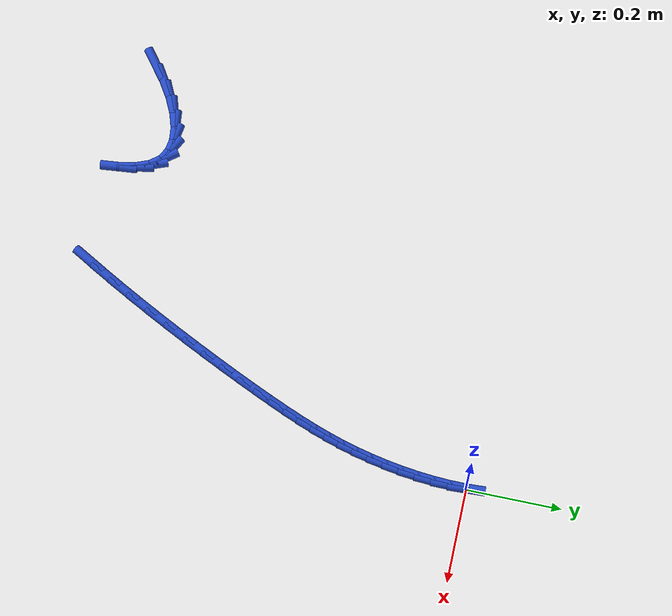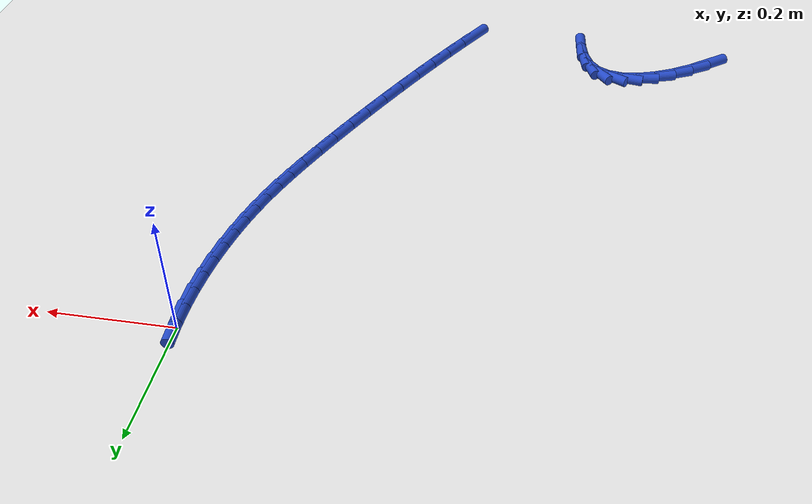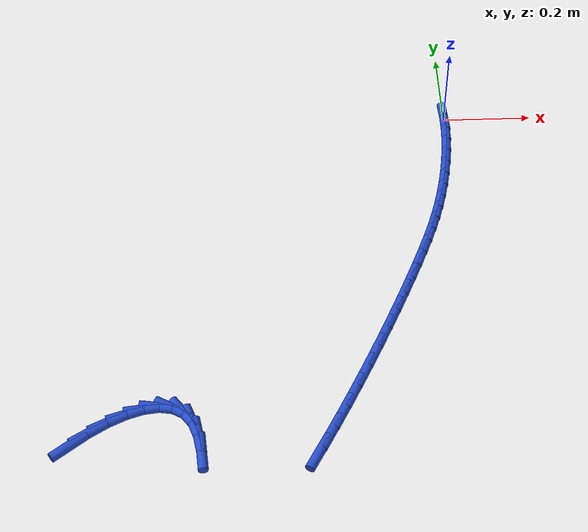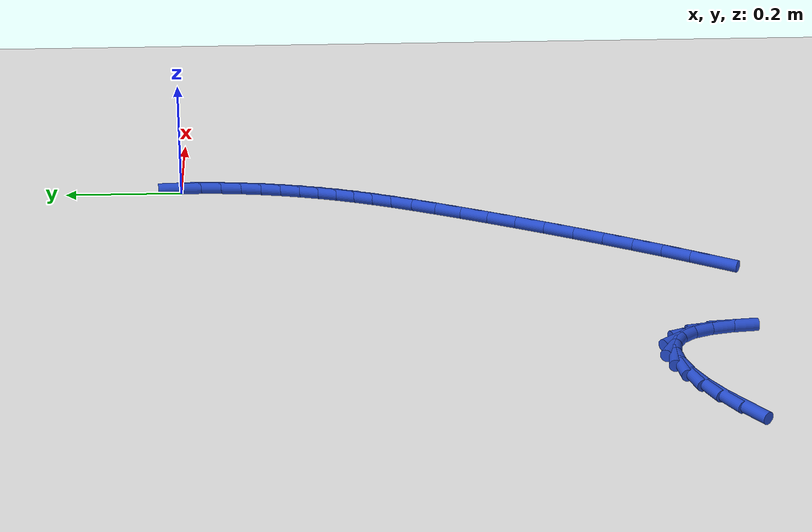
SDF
<sdf version="1.6">
 <world name="default">
  <model name="ground_plane">
   <static>1</static>
   <link name="link">
    <collision name="collision">
     <geometry><plane><normal>0 0 1</normal><size>100 100</size></plane></geometry>
     <surface><friction><ode><mu>100</mu><mu2>50</mu2></ode></friction></surface>
    </collision>
    <visual name="visual">
     <cast_shadows>0</cast_shadows>
     <geometry><plane><normal>0 0 1</normal><size>100 100</size></plane></geometry>
     <material>
      <script><uri>file://media/materials/scripts/gazebo.material</uri><name>Gazebo/WhiteGlow</name></script>
     </material>
    </visual>
   </link>
  </model>
  <model name="line">
   <link name="link_0">
    <pose>3.469446951953614e-18 6.938893903907228e-18 0.01 0 1.57 -1.520493145179703</pose>
    <collision name="collision">
     <geometry><cylinder><radius>0.01</radius><length>0.08</length></cylinder></geometry>
    </collision>
    <visual name="visual">
     <material>
      <script><name>Gazebo/Blue</name><uri>file://media/materials/scripts/gazebo.material</uri></script>
     </material>
     <geometry><cylinder><radius>0.01</radius><length>0.08</length></cylinder></geometry>
    </visual>
   </link>
   <link name="link_229">
    <pose>-0.7951911140321126 -0.8473373465586784 0.01 0 1.57 0.6537888639458509</pose>
    <collision name="collision">
     <geometry><cylinder><radius>0.01</radius><length>0.08</length></cylinder></geometry>
    </collision>
    <visual name="visual">
     <material>
      <script><name>Gazebo/Blue</name><uri>file://media/materials/scripts/gazebo.material</uri></script>
     </material>
     <geometry><cylinder><radius>0.01</radius><length>0.08</length></cylinder></geometry>
    </visual>
   </link>
   <link name="link_230">
    <pose>-0.7599294429186683 -0.8203198475708031 0.01 0 1.57 0.5587821787050169</pose>
    <collision name="collision">
     <geometry><cylinder><radius>0.01</radius><length>0.08</length></cylinder></geometry>
    </collision>
    <visual name="visual">
     <material>
      <script><name>Gazebo/Blue</name><uri>file://media/materials/scripts/gazebo.material</uri></script>
     </material>
     <geometry><cylinder><radius>0.01</radius><length>0.08</length></cylinder></geometry>
    </visual>
   </link>
   <link name="link_231">
    <pose>-0.724520701985153 -0.798180379214861 0.01 0 1.57 0.44696691735292043</pose>
    <collision name="collision">
     <geometry><cylinder><radius>0.01</radius><length>0.08</length></cylinder></geometry>
    </collision>
    <visual name="visual">
     <material>
      <script><name>Gazebo/Blue</name><uri>file://media/materials/scripts/gazebo.material</uri></script>
     </material>
     <geometry><cylinder><radius>0.01</radius><length>0.08</length></cylinder></geometry>
    </visual>
   </link>
   <link name="link_232">
    <pose>-0.6899062193146044 -0.7815889758276404 0.01 0 1.57 0.30561596534069996</pose>
    <collision name="collision">
     <geometry><cylinder><radius>0.01</radius><length>0.08</length></cylinder></geometry>
    </collision>
    <visual name="visual">
     <material>
      <script><name>Gazebo/Blue</name><uri>file://media/materials/scripts/gazebo.material</uri></script>
     </material>
     <geometry><cylinder><radius>0.01</radius><length>0.08</length></cylinder></geometry>
    </visual>
   </link>
   <link name="link_233">
    <pose>-0.6570273229900598 -0.7712156717459291 0.01 0 1.57 0.11488726981699572</pose>
    <collision name="collision">
     <geometry><cylinder><radius>0.01</radius><length>0.08</length></cylinder></geometry>
    </collision>
    <visual name="visual">
     <material>
      <script><name>Gazebo/Blue</name><uri>file://media/materials/scripts/gazebo.material</uri></script>
     </material>
     <geometry><cylinder><radius>0.01</radius><length>0.08</length></cylinder></geometry>
    </visual>
   </link>
   <link name="link_234">
    <pose>-0.6268253410945561 -0.7677305013065155 0.01 0 1.57 -0.15203160335804652</pose>
    <collision name="collision">
     <geometry><cylinder><radius>0.01</radius><length>0.08</length></cylinder></geometry>
    </collision>
    <visual name="visual">
     <material>
      <script><name>Gazebo/Blue</name><uri>file://media/materials/scripts/gazebo.material</uri></script>
     </material>
     <geometry><cylinder><radius>0.01</radius><length>0.08</length></cylinder></geometry>
    </visual>
   </link>
   <link name="link_235">
    <pose>-0.6002416017111326 -0.7718034988461878 0.01 0 1.57 -0.5093699727115782</pose>
    <collision name="collision">
     <geometry><cylinder><radius>0.01</radius><length>0.08</length></cylinder></geometry>
    </collision>
    <visual name="visual">
     <material>
      <script><name>Gazebo/Blue</name><uri>file://media/materials/scripts/gazebo.material</uri></script>
     </material>
     <geometry><cylinder><radius>0.01</radius><length>0.08</length></cylinder></geometry>
    </visual>
   </link>
   <link name="link_236">
    <pose>-0.5782174329228261 -0.7841046987017339 0.01 0 1.57 -0.9052236909332019</pose>
    <collision name="collision">
     <geometry><cylinder><radius>0.01</radius><length>0.08</length></cylinder></geometry>
    </collision>
    <visual name="visual">
     <material>
      <script><name>Gazebo/Blue</name><uri>file://media/materials/scripts/gazebo.material</uri></script>
     </material>
     <geometry><cylinder><radius>0.01</radius><length>0.08</length></cylinder></geometry>
    </visual>
   </link>
   <link name="link_237">
    <pose>-0.5616370742571395 -0.805224209565352 0.01 0 1.57 -1.200656387250517</pose>
    <collision name="collision">
     <geometry><cylinder><radius>0.01</radius><length>0.08</length></cylinder></geometry>
    </collision>
    <visual name="visual">
     <material>
      <script><name>Gazebo/Blue</name><uri>file://media/materials/scripts/gazebo.material</uri></script>
     </material>
     <geometry><cylinder><radius>0.01</radius><length>0.08</length></cylinder></geometry>
    </visual>
   </link>
   <link name="link_238">
    <pose>-0.5503523526939785 -0.8343067324187644 0.01 0 1.57 -1.3720951710625002</pose>
    <collision name="collision">
     <geometry><cylinder><radius>0.01</radius><length>0.08</length></cylinder></geometry>
    </collision>
    <visual name="visual">
     <material>
      <script><name>Gazebo/Blue</name><uri>file://media/materials/scripts/gazebo.material</uri></script>
     </material>
     <geometry><cylinder><radius>0.01</radius><length>0.08</length></cylinder></geometry>
    </visual>
   </link>
   <link name="link_239">
    <pose>-0.543318039442638 -0.8692410639730758 0.01 0 1.57 -1.4712386833755975</pose>
    <collision name="collision">
     <geometry><cylinder><radius>0.01</radius><length>0.08</length></cylinder></geometry>
    </collision>
    <visual name="visual">
     <material>
      <script><name>Gazebo/Blue</name><uri>file://media/materials/scripts/gazebo.material</uri></script>
     </material>
     <geometry><cylinder><radius>0.01</radius><length>0.08</length></cylinder></geometry>
    </visual>
   </link>
   <link name="link_257">
    <pose>-0.3207694779513595 -0.8783257569736863 0.01 0 1.57 1.0565773677603651</pose>
    <collision name="collision">
     <geometry><cylinder><radius>0.01</radius><length>0.08</length></cylinder></geometry>
    </collision>
    <visual name="visual">
     <material>
      <script><name>Gazebo/Blue</name><uri>file://media/materials/scripts/gazebo.material</uri></script>
     </material>
     <geometry><cylinder><radius>0.01</radius><length>0.08</length></cylinder></geometry>
    </visual>
   </link>
   <link name="link_258">
    <pose>-0.2963915607066855 -0.8351721914788824 0.01 0 1.57 1.0711567104002082</pose>
    <collision name="collision">
     <geometry><cylinder><radius>0.01</radius><length>0.08</length></cylinder></geometry>
    </collision>
    <visual name="visual">
     <material>
      <script><name>Gazebo/Blue</name><uri>file://media/materials/scripts/gazebo.material</uri></script>
     </material>
     <geometry><cylinder><radius>0.01</radius><length>0.08</length></cylinder></geometry>
    </visual>
   </link>
   <link name="link_259">
    <pose>-0.2719457688917271 -0.7903861154713058 0.01 0 1.57 1.0839276002107192</pose>
    <collision name="collision">
     <geometry><cylinder><radius>0.01</radius><length>0.08</length></cylinder></geometry>
    </collision>
    <visual name="visual">
     <material>
      <script><name>Gazebo/Blue</name><uri>file://media/materials/scripts/gazebo.material</uri></script>
     </material>
     <geometry><cylinder><radius>0.01</radius><length>0.08</length></cylinder></geometry>
    </visual>
   </link>
   <link name="link_260">
    <pose>-0.24764593790328698 -0.7444830484635868 0.01 0 1.57 1.0953874689104877</pose>
    <collision name="collision">
     <geometry><cylinder><radius>0.01</radius><length>0.08</length></cylinder></geometry>
    </collision>
    <visual name="visual">
     <material>
      <script><name>Gazebo/Blue</name><uri>file://media/materials/scripts/gazebo.material</uri></script>
     </material>
     <geometry><cylinder><radius>0.01</radius><length>0.08</length></cylinder></geometry>
    </visual>
   </link>
   <link name="link_261">
    <pose>-0.22370590313816707 -0.6979785099683548 0.01 0 1.57 1.1059276200383434</pose>
    <collision name="collision">
     <geometry><cylinder><radius>0.01</radius><length>0.08</length></cylinder></geometry>
    </collision>
    <visual name="visual">
     <material>
      <script><name>Gazebo/Blue</name><uri>file://media/materials/scripts/gazebo.material</uri></script>
     </material>
     <geometry><cylinder><radius>0.01</radius><length>0.08</length></cylinder></geometry>
    </visual>
   </link>
   <link name="link_262">
    <pose>-0.2003394999931715 -0.651388019498243 0.01 0 1.57 1.1158782075319014</pose>
    <collision name="collision">
     <geometry><cylinder><radius>0.01</radius><length>0.08</length></cylinder></geometry>
    </collision>
    <visual name="visual">
     <material>
      <script><name>Gazebo/Blue</name><uri>file://media/materials/scripts/gazebo.material</uri></script>
     </material>
     <geometry><cylinder><radius>0.01</radius><length>0.08</length></cylinder></geometry>
    </visual>
   </link>
   <link name="link_263">
    <pose>-0.17776056386510208 -0.6052270965658806 0.01 0 1.57 1.1255430470915928</pose>
    <collision name="collision">
     <geometry><cylinder><radius>0.01</radius><length>0.08</length></cylinder></geometry>
    </collision>
    <visual name="visual">
     <material>
      <script><name>Gazebo/Blue</name><uri>file://media/materials/scripts/gazebo.material</uri></script>
     </material>
     <geometry><cylinder><radius>0.01</radius><length>0.08</length></cylinder></geometry>
    </visual>
   </link>
   <link name="link_264">
    <pose>-0.15618293015076154 -0.5600112606838985 0.01 0 1.57 1.1352321317968928</pose>
    <collision name="collision">
     <geometry><cylinder><radius>0.01</radius><length>0.08</length></cylinder></geometry>
    </collision>
    <visual name="visual">
     <material>
      <script><name>Gazebo/Blue</name><uri>file://media/materials/scripts/gazebo.material</uri></script>
     </material>
     <geometry><cylinder><radius>0.01</radius><length>0.08</length></cylinder></geometry>
    </visual>
   </link>
   <link name="link_265">
    <pose>-0.1358204342469525 -0.5162560313649268 0.01 0 1.57 1.145299695449267</pose>
    <collision name="collision">
     <geometry><cylinder><radius>0.01</radius><length>0.08</length></cylinder></geometry>
    </collision>
    <visual name="visual">
     <material>
      <script><name>Gazebo/Blue</name><uri>file://media/materials/scripts/gazebo.material</uri></script>
     </material>
     <geometry><cylinder><radius>0.01</radius><length>0.08</length></cylinder></geometry>
    </visual>
   </link>
   <link name="link_266">
    <pose>-0.11688691155047758 -0.4744769281215964 0.01 0 1.57 1.1561991933224331</pose>
    <collision name="collision">
     <geometry><cylinder><radius>0.01</radius><length>0.08</length></cylinder></geometry>
    </collision>
    <visual name="visual">
     <material>
      <script><name>Gazebo/Blue</name><uri>file://media/materials/scripts/gazebo.material</uri></script>
     </material>
     <geometry><cylinder><radius>0.01</radius><length>0.08</length></cylinder></geometry>
    </visual>
   </link>
   <link name="link_267">
    <pose>-0.09959619745813938 -0.43518947046653783 0.01 0 1.57 1.169022951489019</pose>
    <collision name="collision">
     <geometry><cylinder><radius>0.01</radius><length>0.08</length></cylinder></geometry>
    </collision>
    <visual name="visual">
     <material>
      <script><name>Gazebo/Blue</name><uri>file://media/materials/scripts/gazebo.material</uri></script>
     </material>
     <geometry><cylinder><radius>0.01</radius><length>0.08</length></cylinder></geometry>
    </visual>
   </link>
   <link name="link_268">
    <pose>-0.08410613791150362 -0.3987324206525461 0.01 0 1.57 1.1864721320855627</pose>
    <collision name="collision">
     <geometry><cylinder><radius>0.01</radius><length>0.08</length></cylinder></geometry>
    </collision>
    <visual name="visual">
     <material>
      <script><name>Gazebo/Blue</name><uri>file://media/materials/scripts/gazebo.material</uri></script>
     </material>
     <geometry><cylinder><radius>0.01</radius><length>0.08</length></cylinder></geometry>
    </visual>
   </link>
   <link name="link_269">
    <pose>-0.07032616153318931 -0.3646602938914907 0.01 0 1.57 1.2093712658695965</pose>
    <collision name="collision">
     <geometry><cylinder><radius>0.01</radius><length>0.08</length></cylinder></geometry>
    </collision>
    <visual name="visual">
     <material>
      <script><name>Gazebo/Blue</name><uri>file://media/materials/scripts/gazebo.material</uri></script>
     </material>
     <geometry><cylinder><radius>0.01</radius><length>0.08</length></cylinder></geometry>
    </visual>
   </link>
   <link name="link_270">
    <pose>-0.05809682433680886 -0.33231017635267895 0.01 0 1.57 1.2373627110017662</pose>
    <collision name="collision">
     <geometry><cylinder><radius>0.01</radius><length>0.08</length></cylinder></geometry>
    </collision>
    <visual name="visual">
     <material>
      <script><name>Gazebo/Blue</name><uri>file://media/materials/scripts/gazebo.material</uri></script>
     </material>
     <geometry><cylinder><radius>0.01</radius><length>0.08</length></cylinder></geometry>
    </visual>
   </link>
   <link name="link_271">
    <pose>-0.04725867977527284 -0.301019146121349 0.01 0 1.57 1.2693347982070164</pose>
    <collision name="collision">
     <geometry><cylinder><radius>0.01</radius><length>0.08</length></cylinder></geometry>
    </collision>
    <visual name="visual">
     <material>
      <script><name>Gazebo/Blue</name><uri>file://media/materials/scripts/gazebo.material</uri></script>
     </material>
     <geometry><cylinder><radius>0.01</radius><length>0.08</length></cylinder></geometry>
    </visual>
   </link>
   <link name="link_272">
    <pose>-0.037652281301490724 -0.2701242812827355 0.01 0 1.57 1.3034849804595943</pose>
    <collision name="collision">
     <geometry><cylinder><radius>0.01</radius><length>0.08</length></cylinder></geometry>
    </collision>
    <visual name="visual">
     <material>
      <script><name>Gazebo/Blue</name><uri>file://media/materials/scripts/gazebo.material</uri></script>
     </material>
     <geometry><cylinder><radius>0.01</radius><length>0.08</length></cylinder></geometry>
    </visual>
   </link>
   <link name="link_273">
    <pose>-0.029118182368372377 -0.2389626599220746 0.01 0 1.57 1.3376774348334606</pose>
    <collision name="collision">
     <geometry><cylinder><radius>0.01</radius><length>0.08</length></cylinder></geometry>
    </collision>
    <visual name="visual">
     <material>
      <script><name>Gazebo/Blue</name><uri>file://media/materials/scripts/gazebo.material</uri></script>
     </material>
     <geometry><cylinder><radius>0.01</radius><length>0.08</length></cylinder></geometry>
    </visual>
   </link>
   <link name="link_274">
    <pose>-0.021502712888245536 -0.20688883584399112 0.01 0 1.57 1.3714540051175692</pose>
    <collision name="collision">
     <geometry><cylinder><radius>0.01</radius><length>0.08</length></cylinder></geometry>
    </collision>
    <visual name="visual">
     <material>
      <script><name>Gazebo/Blue</name><uri>file://media/materials/scripts/gazebo.material</uri></script>
     </material>
     <geometry><cylinder><radius>0.01</radius><length>0.08</length></cylinder></geometry>
    </visual>
   </link>
   <link name="link_275">
    <pose>-0.014796484494685461 -0.17369386325778413 0.01 0 1.57 1.4062939930125975</pose>
    <collision name="collision">
     <geometry><cylinder><radius>0.01</radius><length>0.08</length></cylinder></geometry>
    </collision>
    <visual name="visual">
     <material>
      <script><name>Gazebo/Blue</name><uri>file://media/materials/scripts/gazebo.material</uri></script>
     </material>
     <geometry><cylinder><radius>0.01</radius><length>0.08</length></cylinder></geometry>
    </visual>
   </link>
   <link name="link_276">
    <pose>-0.00914103740557559 -0.1396254057585968 0.01 0 1.57 1.4429805937534197</pose>
    <collision name="collision">
     <geometry><cylinder><radius>0.01</radius><length>0.08</length></cylinder></geometry>
    </collision>
    <visual name="visual">
     <material>
      <script><name>Gazebo/Blue</name><uri>file://media/materials/scripts/gazebo.material</uri></script>
     </material>
     <geometry><cylinder><radius>0.01</radius><length>0.08</length></cylinder></geometry>
    </visual>
   </link>
   <link name="link_277">
    <pose>-0.004685018516234012 -0.104952627014827 0.01 0 1.57 1.4822502041886454</pose>
    <collision name="collision">
     <geometry><cylinder><radius>0.01</radius><length>0.08</length></cylinder></geometry>
    </collision>
    <visual name="visual">
     <material>
      <script><name>Gazebo/Blue</name><uri>file://media/materials/scripts/gazebo.material</uri></script>
     </material>
     <geometry><cylinder><radius>0.01</radius><length>0.08</length></cylinder></geometry>
    </visual>
   </link>
   <link name="link_278">
    <pose>-0.0015770747219788243 -0.06994469069487255 0.01 0 1.57 1.5248907255278983</pose>
    <collision name="collision">
     <geometry><cylinder><radius>0.01</radius><length>0.08</length></cylinder></geometry>
    </collision>
    <visual name="visual">
     <material>
      <script><name>Gazebo/Blue</name><uri>file://media/materials/scripts/gazebo.material</uri></script>
     </material>
     <geometry><cylinder><radius>0.01</radius><length>0.08</length></cylinder></geometry>
    </visual>
   </link>
   <link name="link_279">
    <pose>3.414708187191419e-05 -0.03487076046713018 0.01 0 1.57 -1.5698170802714582</pose>
    <collision name="collision">
     <geometry><cylinder><radius>0.01</radius><length>0.08</length></cylinder></geometry>
    </collision>
    <visual name="visual">
     <material>
      <script><name>Gazebo/Blue</name><uri>file://media/materials/scripts/gazebo.material</uri></script>
     </material>
     <geometry><cylinder><radius>0.01</radius><length>0.08</length></cylinder></geometry>
    </visual>
   </link>
  </model>
 </world>
</sdf>
